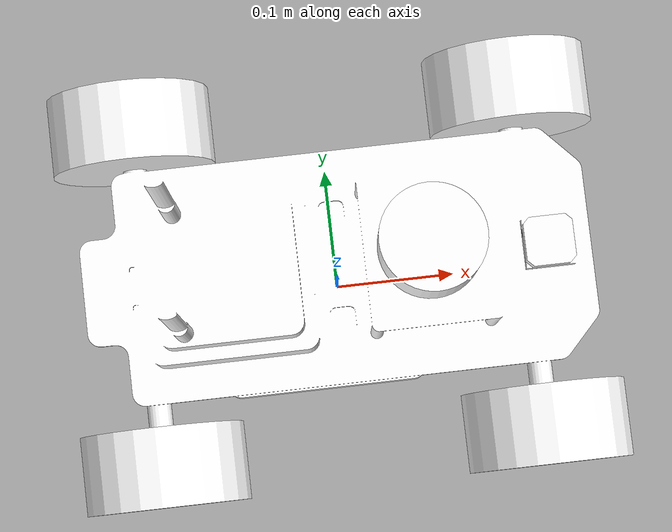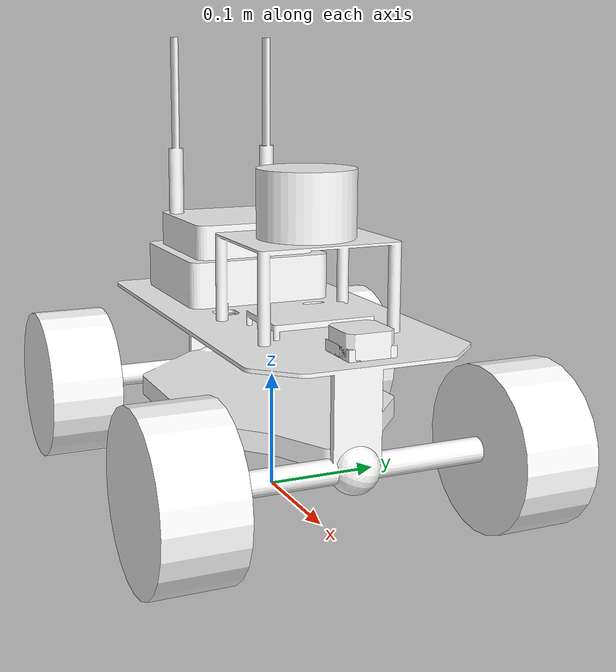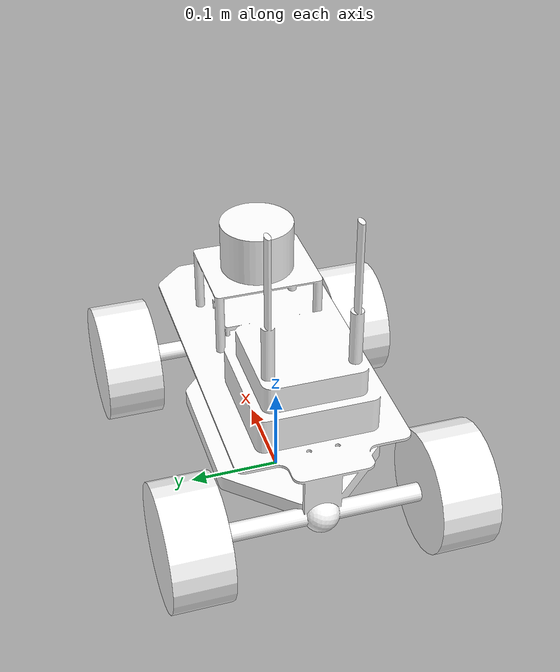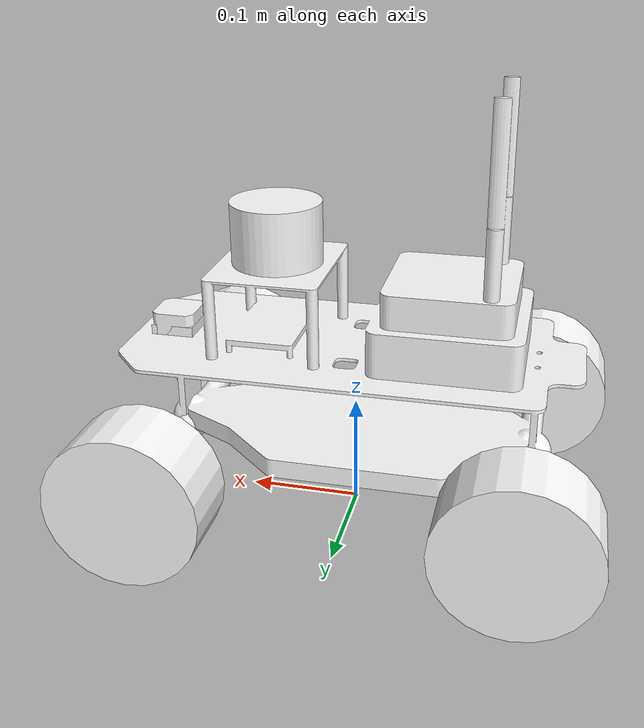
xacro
<?xml version="1.0"?>
<robot name="racecar" xmlns:xacro="http://www.ros.org/wiki/xacro">
  <xacro:arg name="enable_odom_tf" default="true"/>
  <xacro:arg name="odom_frame" default="odom"/>
  <xacro:arg name="odom_topic" default="odom"/>
  <xacro:arg name="cmd_topic" default="cmd_vel"/>
  <xacro:include filename="$(find racecar_description)/urdf/move_macro.xacro"/>
  <xacro:include filename="$(find racecar_description)/urdf/laser_macro.xacro"/>
  <xacro:include filename="$(find racecar_description)/urdf/imu_macro.xacro"/>
  <link name="base_link"/>

  <xacro:body_macro prefix="chassis" parent="base_link"/>
  <xacro:rear_wheel_macro prefix="right_rear_wheel" parent="base_link" xyz="-0.1575 -0.14 0.0675"/>
  <xacro:rear_wheel_macro prefix="left_rear_wheel" parent="base_link" xyz="-0.1575 0.14 0.0675"/>
  <xacro:steering_hinge_macro prefix="right_steering_hinge" parent="base_link" xyz="0.1575 -0.14 0.0675"/>
  <xacro:steering_hinge_macro prefix="left_steering_hinge" parent="base_link" xyz="0.1575 0.14 0.0675"/>
  <xacro:front_wheel_macro prefix="right_front_wheel" parent="right_steering_hinge" xyz="0 0 0"/>
  <xacro:front_wheel_macro prefix="left_front_wheel" parent="left_steering_hinge" xyz="0 0 0"/>
  <xacro:laser_macro prefix="laser" parent="base_link" xyz="0.07 0 0.2575"/>
  <xacro:imu_macro prefix="imu" parent="base_link" xyz="0.16575 0 0.168"/>

  <gazebo>
    <plugin name="gazebo_ros_control" filename="libgazebo_ros_control.so">
      <robotNamespace>/racecar</robotNamespace>
       <robotSimType>gazebo_ros_control/DefaultRobotHWSim</robotSimType>
      <legacyModeNS>true</legacyModeNS>
    </plugin>
  </gazebo>
</robot>

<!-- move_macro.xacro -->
<robot name="racecar" xmlns:xacro="http://www.ros.org/wiki/xacro">
  <material name="white">
    <color rgba="1.0 1.0 1.0 1.0"/>
  </material>

  <!-- add wheel -->
  <xacro:macro name="wheel_macro" params="prefix parent xyz">
    <joint name="${prefix}_joint" type="continuous">
      <origin xyz="${xyz}" rpy="1.5708 0 0"/>
      <parent link="${parent}"/>
      <child  link="${prefix}"/>
      <axis xyz="0 0 -1" />
      <limit velocity="10" effort="1000"/>
    </joint>

    <link name="${prefix}">
      <inertial>
        <mass value="0.34055"/>
        <origin xyz="0 0 0"/>
        <inertia ixx="0.00026046" ixy="0" ixz="0" iyy="0.00026046" iyz="0" izz="0.00041226"/>
      </inertial>
      <visual>
        <origin rpy="0 0 0" xyz="0 0 0"/>
        <geometry>
          <cylinder radius="0.0675" length="0.064"/>
        </geometry>
        <material name="white"/>
      </visual>
      <collision>
        <origin rpy="0 0 0" xyz="0 0 0"/>
        <geometry>
          <cylinder radius="0.0675" length="0.064"/>
        </geometry>
      </collision>
    </link>

    <transmission name="${prefix}_transmission" type="SimpleTransmission">
      <type>transmission_interface/SimpleTransmission</type>
      <joint name="${prefix}_joint">
        <hardwareInterface>hardware_interface/EffortJointInterface</hardwareInterface>
      </joint>
      <actuator name="${prefix}_motor">
        <hardwareInterface>hardware_interface/EffortJointInterface</hardwareInterface>
        <mechanicalReduction>1</mechanicalReduction>
      </actuator>
    </transmission>
  </xacro:macro>

  <xacro:macro name="rear_wheel_macro" params="prefix parent xyz">

    <xacro:wheel_macro parent="${parent}" prefix="${prefix}" xyz="${xyz}"/>

    <gazebo reference="${prefix}_link">
      <material>Gazebo/White</material>
      <mu1 value="2.0"/>
      <mu2 value="2.0"/>
      <kp  value="10000000.0"/>
      <kd  value="1.0"/>
      <fdir1 value="1 0 0"/>
    </gazebo>

  </xacro:macro>

  <xacro:macro name="front_wheel_macro" params="prefix parent xyz">

    <xacro:wheel_macro parent="${parent}" prefix="${prefix}" xyz="${xyz}"/>

    <gazebo reference="${prefix}_link">
      <material>Gazebo/White</material>
      <mu1 value="2.0"/>
      <mu2 value="2.0"/>
      <kp  value="10000000.0"/>
      <kd  value="1.0"/>
      <fdir1 value="0 0 1"/>
    </gazebo>

  </xacro:macro>

  <!-- add hinge -->
  <xacro:macro name="steering_hinge_macro" params="prefix parent xyz">

    <joint name="${prefix}_joint" type="continuous">
      <origin xyz="${xyz}" rpy="0 1.5708 0"/>
      <parent link="${parent}"/>
      <child link="${prefix}"/>
      <axis xyz="-1 0 0"/>
      <limit lower="-1.0" upper="1.0" effort="10" velocity="1000"/>
    </joint>

    <link name="${prefix}">
      <inertial>
        <origin xyz="0 0 0" rpy="0 0 0"/>
        <mass value="0.100"/>
        <inertia ixx="4E-06" ixy="0" ixz="0" iyy="4E-06" iyz="0" izz="4E-06"/>
      </inertial>
    </link>

    <transmission name="${prefix}_transmission" type="SimpleTransmission">
      <type>transmission_interface/SimpleTransmission</type>
      <joint name="${prefix}_joint">
        <hardwareInterface>hardware_interface/EffortJointInterface</hardwareInterface>
      </joint>
      <actuator name="${prefix}_motor">
        <hardwareInterface>hardware_interface/EffortJointInterface</hardwareInterface>
        <mechanicalReduction>1</mechanicalReduction>
      </actuator>
    </transmission>

  </xacro:macro>

  <!-- add body -->
  <xacro:macro name="body_macro" params="prefix parent">
    <joint name="base_link_joint" type="fixed">
      <parent link="${parent}"/>
      <child  link="${prefix}"/>
      <origin xyz="0 0 0" rpy="0 0 0"/>
    </joint>

    <link name="${prefix}">
      <inertial>
        <mass value="10.0"/>
        <origin xyz=" 0 0 0.01"/>
        <inertia ixx="0.010609" ixy="0.0" ixz="0.0" iyy="0.050409" iyz="0.0" izz="0.05865"/>
      </inertial>
      <visual>
        <origin rpy="0 0 0" xyz="0 0 0.1175"/>
        <geometry>
          <mesh filename="package://racecar_description/meshes/racecar/chassis.STL" scale="0.01 0.01 0.01"/>
        </geometry>
        <material name="white"/>
      </visual>
      <collision>
        <origin rpy="0 0 0" xyz="0 0 0.1175"/>
        <geometry>
          <mesh filename="package://racecar_description/meshes/racecar/chassis_no_antna.STL" scale="0.01 0.01 0.01"/>
        </geometry>
      </collision>
    </link>
    <gazebo reference="${prefix}">
      <material value="Gazebo/White"/>
      <mu1 value="0.0"/>
      <mu2 value="0.0"/>
      <kp  value="10000000.0"/>
      <kd  value="1.0"/>
    </gazebo>
  </xacro:macro>
</robot>

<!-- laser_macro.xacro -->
<robot name="racecar" xmlns:xacro="http://www.ros.org/wiki/xacro">
  <xacro:macro name="laser_macro" params="parent prefix xyz">
    <joint name="${prefix}_joint" type="fixed">
      <parent link="${parent}"/>
      <child  link="${prefix}_link"/>
      <origin xyz="${xyz}" rpy="0 0 0"/>
    </joint>

    <link name="${prefix}_link">
      <inertial>
        <mass value="0.130" />
        <origin xyz="0 0 0" rpy="0 0 0"/>
        <inertia ixx="4E-06" ixy="0" ixz="0" iyy="4E-06" iyz="0" izz="4E-06" />
      </inertial>
      <collision>
        <origin rpy="0 0 0" xyz="0 0 0"/>
        <geometry>
          <mesh filename="package://racecar_description/meshes/racecar/laser.STL" scale="0.01 0.01 0.01"/>
        </geometry>
      </collision>
      <visual>
        <origin rpy="0 0 0" xyz="0 0 0"/>
        <geometry>
          <mesh filename="package://racecar_description/meshes/racecar/laser.STL" scale="0.01 0.01 0.01"/>
        </geometry>
        <material name="white"/>
      </visual>
    </link>

    <gazebo reference="${prefix}_link">
      <material>Gazebo/White</material>
      <sensor type="ray" name="${prefix}">
        <pose>0 0 0.0175 0 0 0</pose>
        <visualize>false</visualize>
        <update_rate>10</update_rate>
        <ray>
          <scan>
            <horizontal>
              <samples>360</samples>
              <resolution>1</resolution>
              <min_angle>${radians(0)}</min_angle>
              <max_angle>${radians(360)}</max_angle>
            </horizontal>
          </scan>
          <range>
            <min>0.05</min>
            <max>8</max>
            <resolution>0.01</resolution>
          </range>
          <noise>
            <type>gaussian</type>
            <mean>0.0</mean>
            <stddev>0.01</stddev>
          </noise>
        </ray>
        <plugin name="gazebo_ros_laser_controller" filename="libgazebo_ros_laser.so">
          <topicName>/${prefix}/scan</topicName>
          <frameName>${prefix}_link</frameName>
        </plugin>
      </sensor>
    </gazebo>
  </xacro:macro>
</robot>

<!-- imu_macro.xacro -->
<robot name="racecar" xmlns:xacro="http://www.ros.org/wiki/xacro">
  <xacro:macro name="imu_macro" params="parent prefix xyz">
    <joint name="imu_joint" type="fixed">
      <parent link="${parent}"/>
      <child  link="${prefix}_link"/>
      <origin xyz="${xyz}" rpy="0 0 0"/>
    </joint>

    <link name="${prefix}_link">
      <inertial>
        <mass value="0.130" />
        <origin xyz="0 0 0" rpy="0 0 0"/>
        <inertia ixx="4E-06" ixy="0" ixz="0" iyy="4E-06" iyz="0" izz="4E-06" />
      </inertial>
      <collision>
        <origin rpy="0 0 0" xyz="0 0 0"/>
        <geometry>
          <mesh filename="package://racecar_description/meshes/racecar/imu.STL" scale="0.01 0.01 0.01"/>
        </geometry>
      </collision>
      <visual>
        <origin rpy="0 0 0" xyz="0 0 0"/>
        <geometry>
          <mesh filename="package://racecar_description/meshes/racecar/imu.STL" scale="0.01 0.01 0.01"/>
        </geometry>
        <material name="white"/>
      </visual>
    </link>

    <gazebo reference="${prefix}_link">
      <material>Gazebo/White</material>
      <gravity>true</gravity>
      <sensor name="imu_sensor" type="imu">
        <always_on>true</always_on>
        <update_rate>100</update_rate>
        <visualize>true</visualize>
        <topic>__default_topic__</topic>
        <plugin name="gazebo_ros_imu_controller" filename="libgazebo_ros_imu_sensor.so">
          <topicName>/${prefix}/data</topicName>
          <bodyName>${prefix}_link</bodyName>
          <updateRateHZ>10.0</updateRateHZ>
          <gaussianNoise>0.0</gaussianNoise>
          <xyzOffset>0 0 0</xyzOffset>
          <rpyOffset>0 0 0</rpyOffset>
          <frameName>${prefix}_link</frameName>
        </plugin>
        <pose>0 0 0 0 0 0</pose>
      </sensor>
    </gazebo>
  </xacro:macro>
</robot>
